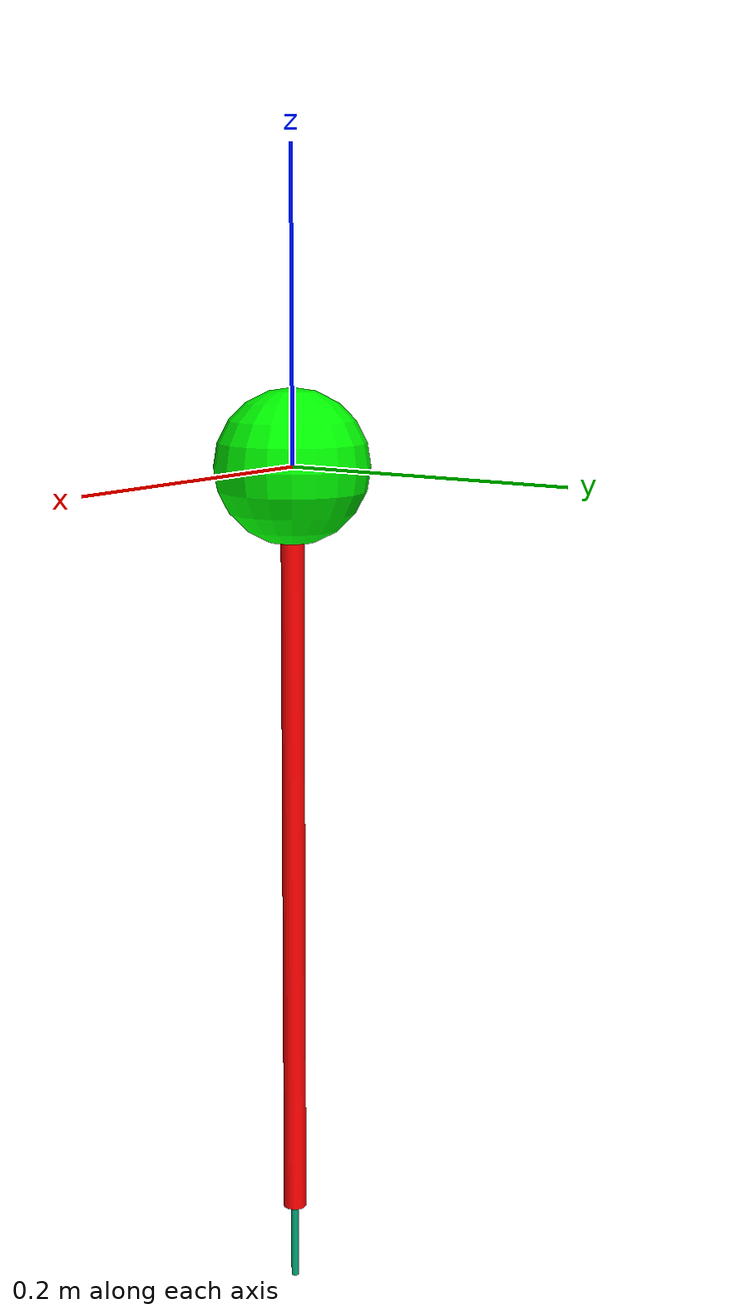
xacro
<?xml version="1.0"?>

<robot name="CompassGait" xmlns:xacro="http://ros.org/wiki/xacro">

  <xacro:property name="mh" value="10" />
  <xacro:property name="m" value="2.5" />
  <xacro:property name="a" value=".5" />
  <xacro:property name="b" value="0.1"/>
  <xacro:property name="mt" value="1"/>

  <xacro:macro name="leg" params="lr cname color">
    <link name="${lr}_leg">
      <inertial>
	<origin  xyz = "0 0 ${-(a)/2}"/>
	<mass value = "${m}"/>
	<inertia ixx="0.01"  ixy="0"  ixz="0" iyy="0.01" iyz="0" izz="0.01" />
      </inertial>
      <visual>
      	<origin xyz="0 0 ${-(a)/2}" />
	      <geometry>
	        <cylinder radius="0.0075" length="${a}"/>
      	</geometry>
        <material name="${cname}">
          <color rgba="${color}" />
        </material>
      </visual>
    </link>
    <link name="${lr}_toe">
	<inertial>
		<mass value = "${mt}"/>
		<inertia ixx="0.01" ixy="0" ixz="0" iyy="0.01" iyz="0" izz="0.01"/>
	</inertial>
	<visual>
		<geometry>
			<cylinder radius="0.0025" length="${b}"/>
		</geometry>
	</visual>
	<collision>
		<origin xyz="0 0 ${-b/2}"/>
		<geometry>
			<sphere radius="0.00001"/>
		</geometry>
	</collision>
    </link>
    <joint name="${lr}_toe_joint" type="prismatic">
	<origin xyz="0 0 ${-a}"/>
	<parent link="${lr}_leg"/>
	<child link="${lr}_toe"/>
	<axis xyz="0 0 1"/>
	<limit upper="${b/2}" lower="${-b/2}" effort="1000" velocity="1000"/>
    </joint>
  <transmission type="SimpleTransmission" name="${lr}_toe_trans">
    <actuator name="${lr}_toe_torque" />
    <joint name="${lr}_toe_joint" />
    <mechanicalReduction>1</mechanicalReduction>
  </transmission>
  </xacro:macro>

  <link name="hip">
    <inertial>
      <origin  xyz = "0.0 0.00 0"/>
      <mass value="${mh}" />
      <inertia ixx="0.01"  ixy="0"  ixz="0" iyy="0.01" iyz="0" izz="0.01" />
    </inertial>
    <visual>
      <geometry>
        <sphere radius="${.005*mh}" />
      </geometry>
      <material name="green">
        <color rgba="0 1 0 1" />
      </material>
    </visual>
  </link>

  <xacro:leg lr="left" cname="red" color="1 0 0 1" />
  <xacro:leg lr="right"  cname="blue" color="0 0 1 1" />

  <joint name="leftLegWeld" type="fixed">
    <parent link="hip" />
    <child link="left_leg" />
  </joint>

  <joint name="hipPin" type="continuous">
    <parent link="hip" />
    <child link="right_leg" />
    <axis xyz="0 1 0"/>
  </joint>

  <transmission type="SimpleTransmission" name="hip_trans">
    <actuator name="hip_torque" />
    <joint name="hipPin" />
    <mechanicalReduction>1</mechanicalReduction>
  </transmission>

<gazebo>
    <!-- robot model offset -->
    <pose>0 0 0.6 0 0 0</pose>
  </gazebo>
  <gazebo>
    <plugin filename="libjoint_actuation_plugin.so" name="joint_torque_controller">
      <alwaysOn>true</alwaysOn>
      <topicName>actuator_cmd</topicName>
    </plugin>
    <plugin filename="libgazebo_ros_pub_robot_state.so" name="gazebo_ros_pub_robot_controller">
      <alwaysOn>true</alwaysOn>
      <updateRate>100.0</updateRate>
      <topicName>true_robot_state</topicName>
    </plugin>
  </gazebo>

</robot>
